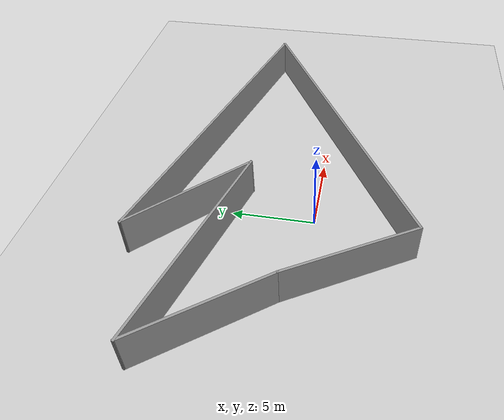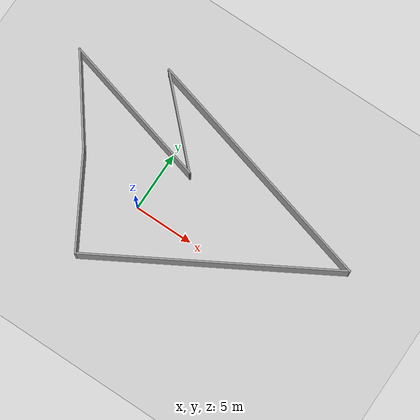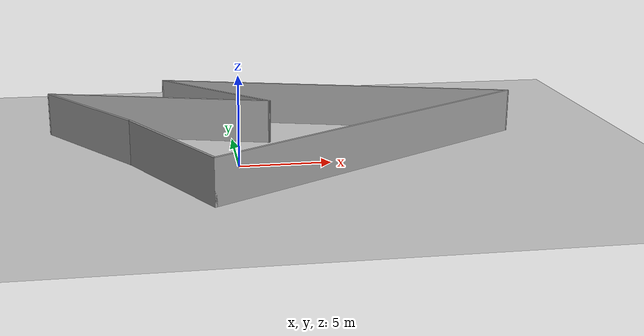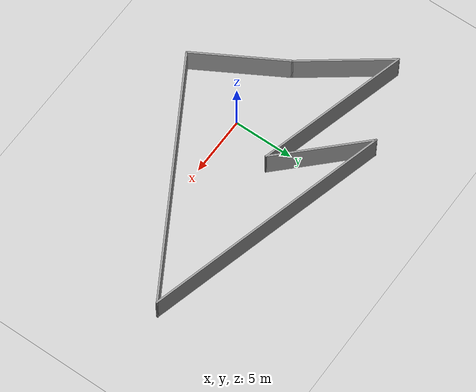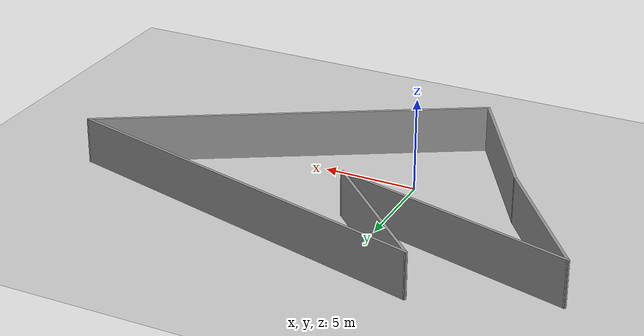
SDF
<sdf version="1.7">
 <world name="default">
  <light name="sun" type="directional">
   <pose>0 0 10 0 -0 0</pose>
   <diffuse>0.8 0.8 0.8 1</diffuse>
   <specular>0.2 0.2 0.2 1</specular>
   <attenuation>
    <range>1000</range>
    <constant>0.9</constant>
    <linear>0.01</linear>
    <quadratic>0.001</quadratic>
   </attenuation>
   <direction>-0.5 0.1 -0.9</direction>
   <spot><inner_angle>0</inner_angle><outer_angle>0</outer_angle><falloff>0</falloff></spot>
  </light>
  <model name="ground_plane">
   <static>1</static>
   <link name="link">
    <collision name="collision">
     <geometry><plane><normal>0 0 1</normal><size>100 100</size></plane></geometry>
     <surface>
      <contact><collide_bitmask>65535</collide_bitmask></contact>
      <friction><ode><mu>100</mu><mu2>50</mu2></ode></friction>
     </surface>
    </collision>
    <visual name="visual">
     <cast_shadows>0</cast_shadows>
     <geometry><plane><normal>0 0 1</normal><size>100 100</size></plane></geometry>
     <material>
      <script><uri>file://media/materials/scripts/gazebo.material</uri><name>Gazebo/Grey</name></script>
     </material>
    </visual>
   </link>
  </model>
  <gravity>0 0 -9.8</gravity>
  <magnetic_field>6e-06 2.3e-05 -4.2e-05</magnetic_field>
  <atmosphere type="adiabatic"/>
  <physics type="ode">
   <max_step_size>0.001</max_step_size>
   <real_time_factor>1</real_time_factor>
   <real_time_update_rate>1000</real_time_update_rate>
  </physics>
  <scene><ambient>0.4 0.4 0.4 1</ambient><background>0.7 0.7 0.7 1</background><shadows>1</shadows></scene>
  <spherical_coordinates>
   <surface_model>EARTH_WGS84</surface_model>
   <latitude_deg>0</latitude_deg>
   <longitude_deg>0</longitude_deg>
   <elevation>0</elevation>
   <heading_deg>0</heading_deg>
  </spherical_coordinates>
  <model name="Untitled">
   <pose>3.02045 2.10434 0 0 -0 0</pose>
   <link name="Wall_10">
    <collision name="Wall_10_Collision">
     <geometry><box><size>21.25 0.15 2.5</size></box></geometry>
     <pose>0 0 1.25 0 -0 0</pose>
    </collision>
    <visual name="Wall_10_Visual">
     <pose>0 0 1.25 0 -0 0</pose>
     <geometry><box><size>21.25 0.15 2.5</size></box></geometry>
     <material>
      <script><uri>file://media/materials/scripts/gazebo.material</uri><name>Gazebo/Grey</name></script>
      <ambient>1 1 1 1</ambient>
     </material>
     <meta><layer>0</layer></meta>
    </visual>
    <pose>4.42983 -2.73235 0 0 -0 0.523599</pose>
   </link>
   <link name="Wall_11">
    <collision name="Wall_11_Collision">
     <geometry><box><size>21.25 0.15 2.5</size></box></geometry>
     <pose>0 0 1.25 0 -0 0</pose>
    </collision>
    <visual name="Wall_11_Visual">
     <pose>0 0 1.25 0 -0 0</pose>
     <geometry><box><size>21.25 0.15 2.5</size></box></geometry>
     <material>
      <script><uri>file://media/materials/scripts/gazebo.material</uri><name>Gazebo/Grey</name></script>
      <ambient>1 1 1 1</ambient>
     </material>
     <meta><layer>0</layer></meta>
    </visual>
    <pose>3.37588 5.27319 0 0 -0 2.87979</pose>
   </link>
   <link name="Wall_12">
    <collision name="Wall_12_Collision">
     <geometry><box><size>8.5 0.15 2.5</size></box></geometry>
     <pose>0 0 1.25 0 -0 0</pose>
    </collision>
    <visual name="Wall_12_Visual">
     <pose>0 0 1.25 0 -0 0</pose>
     <geometry><box><size>8.5 0.15 2.5</size></box></geometry>
     <material>
      <script><uri>file://media/materials/scripts/gazebo.material</uri><name>Gazebo/Grey</name></script>
      <ambient>1 1 1 1</ambient>
     </material>
     <meta><layer>0</layer></meta>
    </visual>
    <pose>-3.86247 5.05156 0 0 -0 -0.785398</pose>
   </link>
   <link name="Wall_13">
    <collision name="Wall_13_Collision">
     <geometry><box><size>13.25 0.15 2.5</size></box></geometry>
     <pose>0 0 1.25 0 -0 0</pose>
    </collision>
    <visual name="Wall_13_Visual">
     <pose>0 0 1.25 0 -0 0</pose>
     <geometry><box><size>13.25 0.15 2.5</size></box></geometry>
     <material>
      <script><uri>file://media/materials/scripts/gazebo.material</uri><name>Gazebo/Grey</name></script>
      <ambient>1 1 1 1</ambient>
     </material>
     <meta><layer>0</layer></meta>
    </visual>
    <pose>-7.23711 3.79466 0 0 -0 2.87979</pose>
   </link>
   <link name="Wall_14">
    <collision name="Wall_14_Collision">
     <geometry><box><size>8.2204 0.15 2.5</size></box></geometry>
     <pose>0 0 1.25 0 -0 0</pose>
    </collision>
    <visual name="Wall_14_Visual">
     <pose>0 0 1.25 0 -0 0</pose>
     <geometry><box><size>8.2204 0.15 2.5</size></box></geometry>
     <material>
      <script><uri>file://media/materials/scripts/gazebo.material</uri><name>Gazebo/Grey</name></script>
      <ambient>1 1 1 1</ambient>
     </material>
     <meta><layer>0</layer></meta>
    </visual>
    <pose>-11.1603 2.24869 0 0 -0 -0.932714</pose>
   </link>
   <link name="Wall_9">
    <collision name="Wall_9_Collision">
     <geometry><box><size>8.25 0.15 2.5</size></box></geometry>
     <pose>0 0 1.25 0 -0 0</pose>
    </collision>
    <visual name="Wall_9_Visual">
     <pose>0 0 1.25 0 -0 0</pose>
     <geometry><box><size>8.25 0.15 2.5</size></box></geometry>
     <material>
      <script><uri>file://media/materials/scripts/gazebo.material</uri><name>Gazebo/Grey</name></script>
      <ambient>1 1 1 1</ambient>
     </material>
     <meta><layer>0</layer></meta>
    </visual>
    <pose>-6.73174 -4.49995 0 0 -0 -1.0472</pose>
   </link>
   <static>1</static>
  </model>
 </world>
</sdf>
